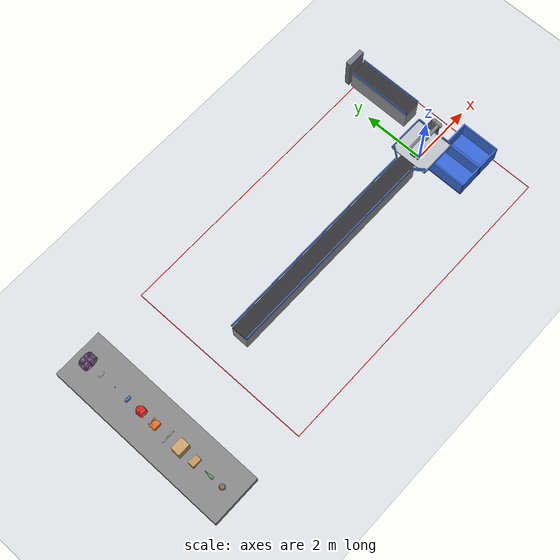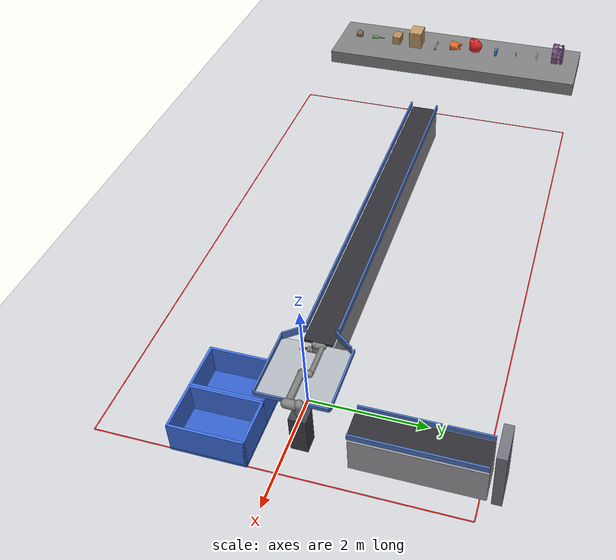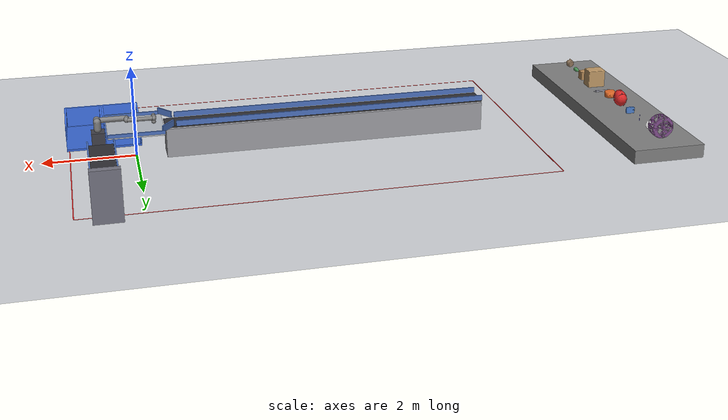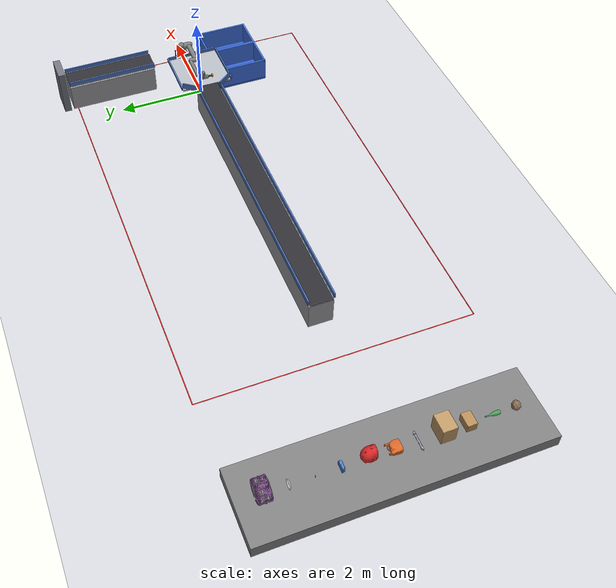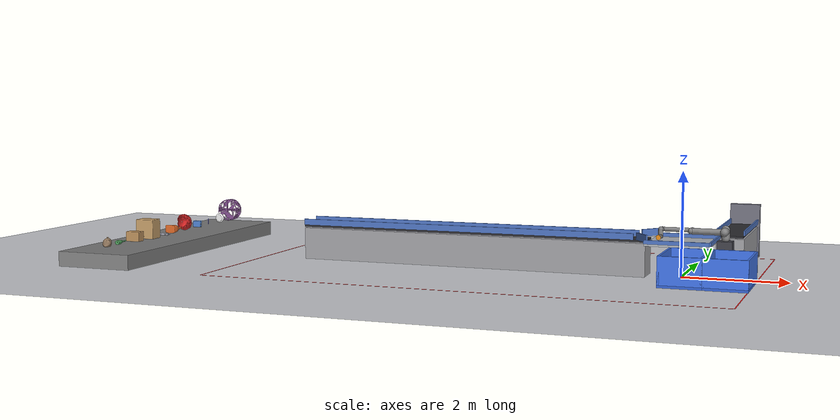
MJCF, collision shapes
<mujoco model="robozone_pak">
  <compiler angle="radian" meshdir="../assets" autolimits="true"/>
  <option timestep="0.002" integrator="implicitfast" cone="elliptic" impratio="10"/>

  <visual>
    <headlight diffuse="0.5 0.5 0.5" ambient="0.4 0.4 0.45" specular="0.3 0.3 0.3"/>
    <quality shadowsize="4096"/>
    <map znear="0.05"/>
    <global offwidth="1280" offheight="720"/>
  </visual>

  <statistic center="-0.5 0 0.9" extent="3.5"/>

  <default>
    <default class="static_gray">
      <geom type="box" rgba="0.62 0.62 0.64 1" friction="0.4 0.005 0.0001"/>
    </default>
    <default class="rail">
      <geom type="box" rgba="0.3 0.45 0.75 1" friction="0.2 0.005 0.0001"/>
    </default>
    <default class="belt_surf">
      <geom type="box" rgba="0.18 0.18 0.2 1" friction="1.1 0.01 0.001"/>
    </default>
    <default class="slide_low_fric">
      <geom type="box" rgba="0.75 0.75 0.78 1" friction="0.1 0.005 0.0001"/>
    </default>
    <default class="cage">
      <geom type="box" rgba="0.25 0.45 0.9 0.5" friction="0.6 0.005 0.0001"/>
    </default>
    <default class="object">
      <geom type="mesh" condim="6" friction="0.9 0.02 0.002" solref="0.01 1" group="1"/>
    </default>
    <default class="marker">
      <site type="sphere" size="0.035" group="5"/>
    </default>
  </default>

  <include file="cell_ur10e.xml"/>
  <include file="objects.xml"/>

  <worldbody>
    <light name="top_light" dir="0 0 -1" pos="-2 0 6" diffuse="0.7 0.7 0.7" directional="true"/>
    <light name="cell_light" dir="-0.3 0 -1" pos="1.5 0 4" diffuse="0.5 0.5 0.5"/>

    <geom name="floor" type="plane" size="14 6 0.1" pos="-2 0 0"
          rgba="0.82 0.83 0.85 1" friction="0.8 0.005 0.0001"/>

    <!-- Граница рабочей зоны 6000x10000 (визуализация) -->
    <geom name="wz_south" type="box" size="5.0 0.01 0.001" pos="-3.6 -3 0.002"
          rgba="0.9 0.1 0.1 1" contype="0" conaffinity="0"/>
    <geom name="wz_north" type="box" size="5.0 0.01 0.001" pos="-3.6 3 0.002"
          rgba="0.9 0.1 0.1 1" contype="0" conaffinity="0"/>
    <geom name="wz_west" type="box" size="0.01 3.0 0.001" pos="-8.6 0 0.002"
          rgba="0.9 0.1 0.1 1" contype="0" conaffinity="0"/>
    <geom name="wz_east" type="box" size="0.01 3.0 0.001" pos="1.4 0 0.002"
          rgba="0.9 0.1 0.1 1" contype="0" conaffinity="0"/>

    <!-- ================= Подающий конвейер (точка A) ================= -->
    <body name="conveyor_a_frame" pos="-4.17 0 0">
      <geom class="static_gray" size="3.53 0.27 0.32" pos="0 0 0.32"/>
    </body>
    <!-- Движущаяся лента: слайд по X, wrap в коде -->
    <body name="belt_a" pos="-4.165 0 0.68">
      <joint name="belt_a_joint" type="slide" axis="1 0 0" damping="5"/>
      <geom name="belt_a_surf" class="belt_surf" size="3.54 0.25 0.02" mass="60"/>
    </body>
    <!-- Борта ленты (зазор 5 мм над лентой) -->
    <geom class="rail" name="rail_a_left" size="3.42 0.015 0.06" pos="-4.28 0.28 0.765"/>
    <geom class="rail" name="rail_a_right" size="3.42 0.015 0.06" pos="-4.28 -0.28 0.765"/>
    <site name="point_A" class="marker" pos="-7.6 0 0.75" rgba="0.2 0.9 0.2 0.7"/>

    <!-- Расширение к накопителю (направляющие) -->
    <geom class="rail" name="funnel_left" size="0.21 0.015 0.07" pos="-0.675 0.42 0.775"
          euler="0 0 0.906"/>
    <geom class="rail" name="funnel_right" size="0.21 0.015 0.07" pos="-0.675 -0.42 0.775"
          euler="0 0 -0.906"/>

    <!-- ================= Накопитель ================= -->
    <!-- Борта низкие (75 мм): удерживают товар, не мешая манипулятору -->
    <body name="accumulator" pos="0 0 0">
      <!-- Поверхность накопителя удерживает товар для захвата (не роликовая) -->
      <geom type="box" name="acc_table" size="0.6 0.6 0.02" pos="0 0 0.66"
            rgba="0.7 0.72 0.75 1" friction="0.9 0.01 0.001"/>
      <geom class="rail" name="acc_wall_end" size="0.015 0.6 0.0375" pos="0.615 0 0.7175"/>
      <geom class="rail" name="acc_wall_left" size="0.6 0.015 0.0375" pos="0 0.615 0.7175"/>
      <geom class="rail" name="acc_wall_right" size="0.6 0.015 0.0375" pos="0 -0.615 0.7175"/>
    </body>
    <site name="pick_zone" class="marker" pos="0.15 0 0.75" rgba="0.9 0.9 0.2 0.7"/>

    <!-- ================= Зона B: основной сортировщик ================= -->
    <body name="conveyor_b_frame" pos="0.75 2.05 0">
      <geom class="static_gray" size="0.27 1.05 0.32" pos="0 0 0.32"/>
    </body>
    <body name="belt_b" pos="0.75 2.04 0.68">
      <joint name="belt_b_joint" type="slide" axis="0 1 0" damping="5"/>
      <geom name="belt_b_surf" class="belt_surf" size="0.25 1.06 0.02" mass="30"/>
    </body>
    <geom class="rail" name="rail_b_left" size="0.015 1.05 0.05" pos="0.48 2.05 0.755"/>
    <geom class="rail" name="rail_b_right" size="0.015 1.05 0.05" pos="1.02 2.05 0.755"/>
    <!-- Инфид сортера (за границей задачи, визуальный "приёмник") -->
    <geom class="static_gray" name="sorter_infeed" type="box" size="0.3 0.08 0.55"
          pos="0.75 3.25 0.55" rgba="0.45 0.45 0.5 1"/>
    <site name="point_B" class="marker" pos="0.75 3.0 0.8" rgba="0.2 0.9 0.2 0.7"/>

    <!-- ================= Зоны C и D: ролл-кейджи 1200x800x800 ============ -->
    <!-- C: негабарит (кейдж 800×1240 мм, центр под точкой сброса) -->
    <body name="cage_c" pos="0.25 -1.05 0">
      <geom class="cage" name="cage_c_floor" size="0.40 0.62 0.025" pos="0 0 0.075"
            rgba="0.2 0.38 0.8 1"/>
      <geom class="cage" name="cage_c_w1" size="0.40 0.02 0.26" pos="0 0.60 0.36"/>
      <geom class="cage" name="cage_c_w2" size="0.40 0.02 0.26" pos="0 -0.60 0.36"/>
      <geom class="cage" name="cage_c_w3" size="0.02 0.62 0.26" pos="-0.38 0 0.36"/>
      <geom class="cage" name="cage_c_w4" size="0.02 0.62 0.26" pos="0.38 0 0.36"/>
    </body>
    <site name="point_C" class="marker" pos="0.25 -0.7 1.05" rgba="0.9 0.5 0.1 0.7"/>

    <!-- D: доупаковка -->
    <body name="cage_d" pos="1.05 -1.05 0">
      <geom class="cage" name="cage_d_floor" size="0.40 0.62 0.025" pos="0 0 0.075"
            rgba="0.2 0.38 0.8 1"/>
      <geom class="cage" name="cage_d_w1" size="0.40 0.02 0.26" pos="0 0.60 0.36"/>
      <geom class="cage" name="cage_d_w2" size="0.40 0.02 0.26" pos="0 -0.60 0.36"/>
      <geom class="cage" name="cage_d_w3" size="0.02 0.62 0.26" pos="-0.38 0 0.36"/>
      <geom class="cage" name="cage_d_w4" size="0.02 0.62 0.26" pos="0.38 0 0.36"/>
    </body>
    <site name="point_D" class="marker" pos="1.05 -0.7 1.05" rgba="0.9 0.5 0.1 0.7"/>

    <!-- Стеллаж парковки объектов (за пределами рабочей зоны) -->
    <geom class="static_gray" name="park_shelf" size="0.8 3.0 0.15" pos="-11 0 0.15"
          rgba="0.5 0.5 0.5 1"/>

    <!-- ================= Камеры ================= -->
    <!-- Обзор ленты для CV-части -->
    <camera name="cam_overhead" pos="-3.5 0 3.0" quat="1 0 0 0" fovy="50"/>
    <!-- Камера над накопителем (зона захвата) -->
    <camera name="cam_pick" pos="0 0 2.6" quat="1 0 0 0" fovy="55"/>
    <!-- Общий вид ячейки -->
    <camera name="cam_global" pos="-2.5 -4.5 3.6" zaxis="-0.35 -0.75 0.55" fovy="55"/>
  </worldbody>

  <actuator>
    <velocity name="belt_a_drive" joint="belt_a_joint" kv="2000" ctrlrange="-2 2"/>
    <velocity name="belt_b_drive" joint="belt_b_joint" kv="1000" ctrlrange="-2 2"/>
  </actuator>
</mujoco>

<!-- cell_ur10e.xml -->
<mujoco model="ur10e_cell">
  <default>
    <default class="ur10e">
      <material specular="0.5" shininess="0.25"/>
      <joint axis="0 1 0" range="-6.28319 6.28319" armature="0.1"/>
      <position ctrlrange="-6.2831 6.2831"/>
      <general biastype="affine" ctrlrange="-6.2831 6.2831" gainprm="5000" biasprm="0 -5000 -500"/>
      <default class="size4">
        <joint damping="10"/>
        <general forcerange="-330 330"/>
      </default>
      <default class="size3">
        <joint damping="5"/>
        <general forcerange="-150 150"/>
        <default class="size3_limited">
          <joint range="-3.1415 3.1415"/>
          <general ctrlrange="-3.1415 3.1415"/>
        </default>
      </default>
      <default class="size2">
        <joint damping="2"/>
        <general forcerange="-56 56"/>
      </default>
      <default class="visual">
        <geom type="mesh" contype="0" conaffinity="0" group="2"/>
      </default>
      <default class="collision">
        <geom type="capsule" group="3"/>
        <default class="eef_collision">
          <geom type="cylinder"/>
        </default>
      </default>
      <site size="0.001" rgba="0.5 0.5 0.5 0.3" group="4"/>
    </default>
  </default>

  <asset>
    <material class="ur10e" name="black" rgba="0.033 0.033 0.033 1"/>
    <material class="ur10e" name="jointgray" rgba="0.278 0.278 0.278 1"/>
    <material class="ur10e" name="linkgray" rgba="0.82 0.82 0.82 1"/>
    <material class="ur10e" name="urblue" rgba="0.49 0.678 0.8 1"/>

    <mesh file="ur10e/assets/base_0.obj"/>
    <mesh file="ur10e/assets/base_1.obj"/>
    <mesh file="ur10e/assets/shoulder_0.obj"/>
    <mesh file="ur10e/assets/shoulder_1.obj"/>
    <mesh file="ur10e/assets/shoulder_2.obj"/>
    <mesh file="ur10e/assets/upperarm_0.obj"/>
    <mesh file="ur10e/assets/upperarm_1.obj"/>
    <mesh file="ur10e/assets/upperarm_2.obj"/>
    <mesh file="ur10e/assets/upperarm_3.obj"/>
    <mesh file="ur10e/assets/forearm_0.obj"/>
    <mesh file="ur10e/assets/forearm_1.obj"/>
    <mesh file="ur10e/assets/forearm_2.obj"/>
    <mesh file="ur10e/assets/forearm_3.obj"/>
    <mesh file="ur10e/assets/wrist1_0.obj"/>
    <mesh file="ur10e/assets/wrist1_1.obj"/>
    <mesh file="ur10e/assets/wrist1_2.obj"/>
    <mesh file="ur10e/assets/wrist2_0.obj"/>
    <mesh file="ur10e/assets/wrist2_1.obj"/>
    <mesh file="ur10e/assets/wrist2_2.obj"/>
    <mesh file="ur10e/assets/wrist3.obj"/>
  </asset>

  <worldbody>
    <light name="spotlight" mode="targetbodycom" target="wrist_2_link" pos="0.8 -1 3"/>

    <!-- Тумба робота (верх на 0.7 м — уровень ленты) -->
    <body name="robot_pedestal" pos="0.78 0.2 0">
      <geom name="pedestal" type="box" size="0.14 0.14 0.35" pos="0 0 0.35"
            rgba="0.25 0.25 0.28 1"/>
    </body>

    <body name="base" pos="0.78 0.2 0.7" quat="0 0 0 -1" childclass="ur10e">
      <inertial mass="4.0" pos="0 0 0" diaginertia="0.0061063308908 0.0061063308908 0.01125"/>
      <geom mesh="base_0" material="black" class="visual"/>
      <geom mesh="base_1" material="jointgray" class="visual"/>
      <body name="shoulder_link" pos="0 0 0.181">
        <inertial pos="0 0 0" mass="7.778" diaginertia="0.0314743 0.0314743 0.0218756"/>
        <joint name="shoulder_pan_joint" class="size4" axis="0 0 1"/>
        <geom mesh="shoulder_0" material="urblue" class="visual"/>
        <geom mesh="shoulder_1" material="black" class="visual"/>
        <geom mesh="shoulder_2" material="jointgray" class="visual"/>
        <geom class="collision" size="0.078 0.08" pos="0 0 -0.05"/>
        <body name="upper_arm_link" pos="0 0.176 0" quat="1 0 1 0">
          <inertial pos="0 0 0.3065" mass="12.93" diaginertia="0.423074 0.423074 0.0363656"/>
          <joint name="shoulder_lift_joint" class="size4"/>
          <geom mesh="upperarm_0" material="black" class="visual"/>
          <geom mesh="upperarm_1" material="jointgray" class="visual"/>
          <geom mesh="upperarm_2" material="urblue" class="visual"/>
          <geom mesh="upperarm_3" material="linkgray" class="visual"/>
          <geom class="collision" pos="0 -0.05 0" quat="1 1 0 0" size="0.078 0.08"/>
          <geom class="collision" size="0.06 0.3" pos="0 0 0.3"/>
          <body name="forearm_link" pos="0 -0.137 0.613">
            <inertial pos="0 0 0.2855" mass="3.87" diaginertia="0.11059 0.11059 0.0108844"/>
            <joint name="elbow_joint" class="size3_limited"/>
            <geom mesh="forearm_0" material="urblue" class="visual"/>
            <geom mesh="forearm_1" material="black" class="visual"/>
            <geom mesh="forearm_2" material="jointgray" class="visual"/>
            <geom mesh="forearm_3" material="linkgray" class="visual"/>
            <geom class="collision" pos="0 0.08 0" quat="1 1 0 0" size="0.058 0.065"/>
            <geom class="collision" size="0.043 0.28" pos="0 0 0.29"/>
            <body name="wrist_1_link" pos="0 0 0.571" quat="1 0 1 0">
              <inertial pos="0 0.135 0" quat="0.5 0.5 -0.5 0.5" mass="1.96"
                diaginertia="0.0055125 0.00510825 0.00510825"/>
              <joint name="wrist_1_joint" class="size2"/>
              <geom mesh="wrist1_0" material="black" class="visual"/>
              <geom mesh="wrist1_1" material="urblue" class="visual"/>
              <geom mesh="wrist1_2" material="jointgray" class="visual"/>
              <geom class="collision" pos="0 0.06 0" quat="1 1 0 0" size="0.05 0.07"/>
              <body name="wrist_2_link" pos="0 0.135 0">
                <inertial pos="0 0 0.12" quat="0.5 0.5 -0.5 0.5" mass="1.96"
                  diaginertia="0.0055125 0.00510825 0.00510825"/>
                <joint name="wrist_2_joint" axis="0 0 1" class="size2"/>
                <geom mesh="wrist2_0" material="black" class="visual"/>
                <geom mesh="wrist2_1" material="urblue" class="visual"/>
                <geom mesh="wrist2_2" material="jointgray" class="visual"/>
                <geom class="collision" size="0.046 0.065" pos="0 0 0.05"/>
                <geom class="collision" pos="0 0.028 0.12" quat="1 1 0 0" size="0.046 0.043"/>
                <body name="wrist_3_link" pos="0 0 0.12">
                  <inertial pos="0 0.092 0" quat="0 1 -1 0" mass="0.202"
                    diaginertia="0.000204525 0.000144346 0.000144346"/>
                  <joint name="wrist_3_joint" class="size2"/>
                  <geom material="linkgray" mesh="wrist3" class="visual"/>
                  <geom class="eef_collision" pos="0 0.097 0" quat="1 1 0 0" size="0.046 0.02"/>
                  <site name="attachment_site" pos="0 0.1 0" quat="-1 1 0 0"/>

                  <!-- Вакуумный захват -->
                  <body name="suction_mount" pos="0 0.1 0" quat="-1 1 0 0">
                    <geom name="suction_stick" type="cylinder" size="0.018 0.055"
                          pos="0 0 0.055" rgba="0.2 0.2 0.2 1" mass="0.25"/>
                    <body name="suction_cup" pos="0 0 0.125">
                      <!-- margin/gap создают "бесконтактную" зону захвата: вакуум
                           притягивает товар с ~2.5 см, не продавливая его -->
                      <geom name="suction_pad" type="cylinder" size="0.045 0.012"
                            rgba="0.9 0.55 0.1 1" mass="0.15"
                            friction="1.2 0.02 0.005"
                            solref="0.008 1" margin="0.025" gap="0.025"/>
                      <site name="suction_tip" type="cylinder" size="0.046 0.018"
                            pos="0 0 0.008" rgba="1 0.4 0 0.4"/>
                      <!-- Камера «глаз в руке» (POV манипулятора): отведена по +X
                           от присоски и смотрит вниз на товар под захватом -->
                      <camera name="cam_wrist" pos="0.11 0 -0.02"
                              quat="0 0.2588 0.9659 0" fovy="74"/>
                    </body>
                  </body>
                </body>
              </body>
            </body>
          </body>
        </body>
      </body>
    </body>
  </worldbody>

  <actuator>
    <general class="size4" name="shoulder_pan" joint="shoulder_pan_joint"/>
    <general class="size4" name="shoulder_lift" joint="shoulder_lift_joint"/>
    <general class="size3_limited" name="elbow" joint="elbow_joint"/>
    <general class="size2" name="wrist_1" joint="wrist_1_joint"/>
    <general class="size2" name="wrist_2" joint="wrist_2_joint"/>
    <general class="size2" name="wrist_3" joint="wrist_3_joint"/>
    <!-- Вакуум: ctrl 0..1, сила прилипания = gain * ctrl (Н) на контактах присоски -->
    <adhesion name="suction" body="suction_cup" ctrlrange="0 1" gain="500"/>
  </actuator>

  <sensor>
    <framepos name="ee_pos" objtype="site" objname="suction_tip"/>
    <framequat name="ee_quat" objtype="site" objname="suction_tip"/>
    <framelinvel name="ee_vel" objtype="site" objname="suction_tip"/>
    <touch name="suction_touch" site="suction_tip"/>
  </sensor>
</mujoco>

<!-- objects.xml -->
<mujoco model="robozone_objects">
  <asset>
    <mesh name="bag" file="meshes/objects/bag.stl"/>
    <mesh name="bottle" file="meshes/objects/bottle.stl"/>
    <mesh name="box_300x200x200" file="meshes/objects/box_300x200x200.stl"/>
    <mesh name="box_400x400x300" file="meshes/objects/box_400x400x300.stl"/>
    <mesh name="cylinder" file="meshes/objects/cylinder.stl"/>
    <mesh name="detergent" file="meshes/objects/detergent.stl"/>
    <mesh name="helmet" file="meshes/objects/helmet.stl"/>
    <mesh name="lunchbox" file="meshes/objects/lunchbox.stl"/>
    <mesh name="pen" file="meshes/objects/pen.stl"/>
    <mesh name="plate" file="meshes/objects/plate.stl"/>
    <mesh name="pouf" file="meshes/objects/pouf.stl"/>
  </asset>

  <worldbody>
    <body name="obj_bag" pos="-11.0 -2.50 0.36">
      <freejoint name="obj_bag_joint"/>
      <inertial pos="0.0000 0.0000 0.0997" mass="1.2" diaginertia="7.031994e-03 7.318079e-03 6.398859e-03"/>
      <geom class="object" mesh="bag" rgba="0.55 0.45 0.35 1"/>
    </body>
    <body name="obj_bottle" pos="-11.0 -2.00 0.36">
      <freejoint name="obj_bottle_joint"/>
      <inertial pos="0.0000 0.0000 0.0457" mass="0.8" diaginertia="6.750154e-03 1.113861e-03 6.750154e-03"/>
      <geom class="object" mesh="bottle" rgba="0.3 0.6 0.35 1"/>
    </body>
    <body name="obj_box_300x200x200" pos="-11.0 -1.50 0.36">
      <freejoint name="obj_box_300x200x200_joint"/>
      <inertial pos="0.0000 0.0000 0.1000" mass="2.0" diaginertia="1.336671e-02 2.176683e-02 2.180021e-02"/>
      <geom class="object" mesh="box_300x200x200" rgba="0.72 0.55 0.35 1"/>
    </body>
    <body name="obj_box_400x400x300" pos="-11.0 -1.00 0.36">
      <freejoint name="obj_box_400x400x300_joint"/>
      <inertial pos="0.0000 0.0000 0.2000" mass="4.0" diaginertia="8.343342e-02 1.069337e-01 8.370042e-02"/>
      <geom class="object" mesh="box_400x400x300" rgba="0.75 0.6 0.4 1"/>
    </body>
    <body name="obj_cylinder" pos="-11.0 -0.50 0.36">
      <freejoint name="obj_cylinder_joint"/>
      <inertial pos="0.0000 0.0000 0.0250" mass="1.5" diaginertia="5.436250e-04 2.395648e-02 2.387510e-02"/>
      <geom class="object" mesh="cylinder" rgba="0.6 0.6 0.65 1"/>
    </body>
    <body name="obj_detergent" pos="-11.0 0.00 0.36">
      <freejoint name="obj_detergent_joint"/>
      <inertial pos="0.0004 0.0000 0.0893" mass="1.0" diaginertia="9.140871e-03 8.322695e-03 1.207820e-02"/>
      <geom class="object" mesh="detergent" rgba="0.85 0.4 0.15 1"/>
    </body>
    <body name="obj_helmet" pos="-11.0 0.50 0.36">
      <freejoint name="obj_helmet_joint"/>
      <inertial pos="-0.0002 -0.0000 0.1781" mass="1.1" diaginertia="1.971575e-02 1.876778e-02 1.523231e-02"/>
      <geom class="object" mesh="helmet" rgba="0.85 0.15 0.15 1"/>
    </body>
    <body name="obj_lunchbox" pos="-11.0 1.00 0.36">
      <freejoint name="obj_lunchbox_joint"/>
      <inertial pos="0.0000 0.0000 0.0762" mass="0.5" diaginertia="1.129466e-03 2.652757e-03 1.846732e-03"/>
      <geom class="object" mesh="lunchbox" rgba="0.3 0.5 0.8 1"/>
    </body>
    <body name="obj_pen" pos="-11.0 1.50 0.36">
      <freejoint name="obj_pen_joint"/>
      <inertial pos="0.0000 0.0000 0.0742" mass="0.02" diaginertia="3.706195e-05 3.690811e-05 4.238383e-07"/>
      <geom class="object" mesh="pen" rgba="0.2 0.2 0.7 1"/>
    </body>
    <body name="obj_plate" pos="-11.0 2.00 0.36">
      <freejoint name="obj_plate_joint"/>
      <inertial pos="0.0000 0.0000 0.1048" mass="0.4" diaginertia="1.487769e-03 2.924059e-03 1.483467e-03"/>
      <geom class="object" mesh="plate" rgba="0.9 0.9 0.9 1"/>
    </body>
    <body name="obj_pouf" pos="-11.0 2.50 0.36">
      <freejoint name="obj_pouf_joint"/>
      <inertial pos="0.0000 0.0000 0.2445" mass="3.0" diaginertia="7.718046e-02 1.195129e-01 7.718046e-02"/>
      <geom class="object" mesh="pouf" rgba="0.5 0.3 0.55 1"/>
    </body>
  </worldbody>
</mujoco>
